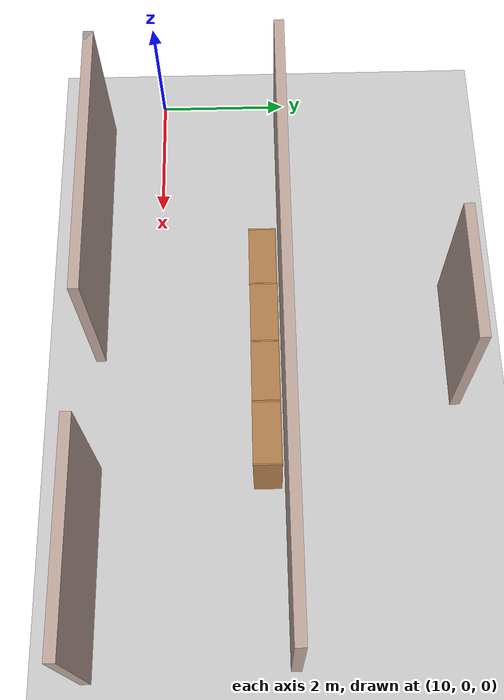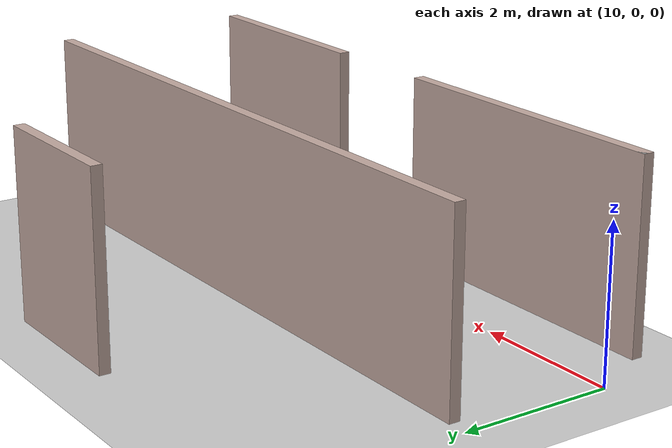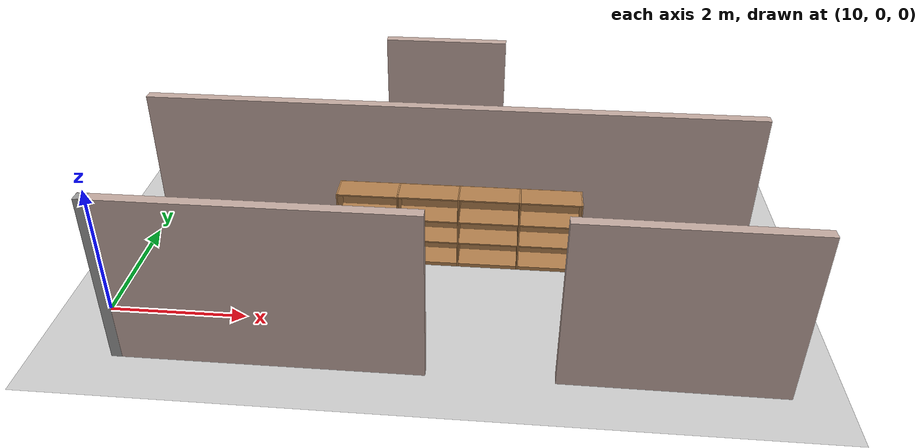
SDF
<sdf version="1.6">
 <world name="default">
  <model name="ground_plane">
   <static>1</static>
   <link name="link">
    <collision name="collision">
     <geometry><plane><normal>0 0 1</normal><size>100 100</size></plane></geometry>
     <surface><friction><ode><mu>100</mu><mu2>50</mu2></ode></friction></surface>
    </collision>
    <visual name="visual">
     <cast_shadows>0</cast_shadows>
     <geometry><plane><normal>0 0 1</normal><size>100 100</size></plane></geometry>
     <material>
      <script><uri>file://media/materials/scripts/gazebo.material</uri><name>Gazebo/Grey</name></script>
     </material>
    </visual>
   </link>
  </model>
  <model name="floor">
   <link name="Wall_100">
    <pose>16.5942 0.36536 0 0 -0 3.13626</pose>
    <visual name="Wall_100_Visual">
     <pose>0 0 1.25 0 -0 0</pose>
     <geometry><box><size>3.00028 0.15 2.5</size></box></geometry>
     <material>
      <script><uri>file://media/materials/scripts/gazebo.material</uri><name>Gazebo/Grey</name></script>
      <ambient>0.760784 0.662745 0.627451 1</ambient>
     </material>
     <meta><layer>0</layer></meta>
    </visual>
    <collision name="Wall_100_Collision">
     <pose>0 0 1.25 0 -0 0</pose>
     <geometry><box><size>3.00028 0.15 2.5</size></box></geometry>
     <surface>
      <friction>
       <ode><mu>1</mu><mu2>1</mu2><fdir1>0 0 0</fdir1><slip1>0</slip1><slip2>0</slip2></ode>
       <torsional>
        <coefficient>1</coefficient>
        <patch_radius>0</patch_radius>
        <surface_radius>0</surface_radius>
        <use_patch_radius>1</use_patch_radius>
        <ode><slip>0</slip></ode>
       </torsional>
      </friction>
      <bounce><restitution_coefficient>0</restitution_coefficient><threshold>1e+06</threshold></bounce>
      <contact>
       <collide_without_contact>0</collide_without_contact>
       <collide_without_contact_bitmask>1</collide_without_contact_bitmask>
       <collide_bitmask>1</collide_bitmask>
       <ode>
        <soft_cfm>0</soft_cfm>
        <soft_erp>0.2</soft_erp>
        <kp>1e+13</kp>
        <kd>1</kd>
        <max_vel>0.01</max_vel>
        <min_depth>0</min_depth>
       </ode>
       <bullet>
        <split_impulse>1</split_impulse>
        <split_impulse_penetration_threshold>-0.01</split_impulse_penetration_threshold>
        <soft_cfm>0</soft_cfm>
        <soft_erp>0.2</soft_erp>
        <kp>1e+13</kp>
        <kd>1</kd>
       </bullet>
      </contact>
     </surface>
    </collision>
   </link>
   <link name="Wall_102">
    <pose>11.2692 0.372965 0 0 -0 3.14159</pose>
    <visual name="Wall_102_Visual">
     <pose>0 0 1.25 0 -0 0</pose>
     <geometry><box><size>4.25 0.15 2.5</size></box></geometry>
     <material>
      <script><uri>file://media/materials/scripts/gazebo.material</uri><name>Gazebo/Grey</name></script>
      <ambient>0.760784 0.662745 0.627451 1</ambient>
     </material>
     <meta><layer>0</layer></meta>
    </visual>
    <collision name="Wall_102_Collision">
     <pose>0 0 1.25 0 -0 0</pose>
     <geometry><box><size>4.25 0.15 2.5</size></box></geometry>
     <surface>
      <friction>
       <ode><mu>1</mu><mu2>1</mu2><fdir1>0 0 0</fdir1><slip1>0</slip1><slip2>0</slip2></ode>
       <torsional>
        <coefficient>1</coefficient>
        <patch_radius>0</patch_radius>
        <surface_radius>0</surface_radius>
        <use_patch_radius>1</use_patch_radius>
        <ode><slip>0</slip></ode>
       </torsional>
      </friction>
      <bounce><restitution_coefficient>0</restitution_coefficient><threshold>1e+06</threshold></bounce>
      <contact>
       <collide_without_contact>0</collide_without_contact>
       <collide_without_contact_bitmask>1</collide_without_contact_bitmask>
       <collide_bitmask>1</collide_bitmask>
       <ode>
        <soft_cfm>0</soft_cfm>
        <soft_erp>0.2</soft_erp>
        <kp>1e+13</kp>
        <kd>1</kd>
        <max_vel>0.01</max_vel>
        <min_depth>0</min_depth>
       </ode>
       <bullet>
        <split_impulse>1</split_impulse>
        <split_impulse_penetration_threshold>-0.01</split_impulse_penetration_threshold>
        <soft_cfm>0</soft_cfm>
        <soft_erp>0.2</soft_erp>
        <kp>1e+13</kp>
        <kd>1</kd>
       </bullet>
      </contact>
     </surface>
    </collision>
   </link>
   <link name="Wall_103">
    <pose>9.21925 0.372965 0 0 -0 0</pose>
    <visual name="Wall_103_Visual">
     <pose>0 0 1.25 0 -0 0</pose>
     <geometry><box><size>0.15 0.15 2.5</size></box></geometry>
     <material>
      <script><uri>file://media/materials/scripts/gazebo.material</uri><name>Gazebo/Grey</name></script>
      <ambient>1 1 1 1</ambient>
     </material>
     <meta><layer>0</layer></meta>
    </visual>
    <collision name="Wall_103_Collision">
     <pose>0 0 1.25 0 -0 0</pose>
     <geometry><box><size>0.15 0.15 2.5</size></box></geometry>
     <surface>
      <friction>
       <ode><mu>1</mu><mu2>1</mu2><fdir1>0 0 0</fdir1><slip1>0</slip1><slip2>0</slip2></ode>
       <torsional>
        <coefficient>1</coefficient>
        <patch_radius>0</patch_radius>
        <surface_radius>0</surface_radius>
        <use_patch_radius>1</use_patch_radius>
        <ode><slip>0</slip></ode>
       </torsional>
      </friction>
      <bounce><restitution_coefficient>0</restitution_coefficient><threshold>1e+06</threshold></bounce>
      <contact>
       <collide_without_contact>0</collide_without_contact>
       <collide_without_contact_bitmask>1</collide_without_contact_bitmask>
       <collide_bitmask>1</collide_bitmask>
       <ode>
        <soft_cfm>0</soft_cfm>
        <soft_erp>0.2</soft_erp>
        <kp>1e+13</kp>
        <kd>1</kd>
        <max_vel>0.01</max_vel>
        <min_depth>0</min_depth>
       </ode>
       <bullet>
        <split_impulse>1</split_impulse>
        <split_impulse_penetration_threshold>-0.01</split_impulse_penetration_threshold>
        <soft_cfm>0</soft_cfm>
        <soft_erp>0.2</soft_erp>
        <kp>1e+13</kp>
        <kd>1</kd>
       </bullet>
      </contact>
     </surface>
    </collision>
   </link>
   <link name="Wall_148">
    <pose>13.2299 5.70287 0 0 -0 0</pose>
    <visual name="Wall_148_Visual">
     <pose>0 0 1.25 0 -0 0</pose>
     <geometry><box><size>2 0.15 2.5</size></box></geometry>
     <material>
      <script><uri>file://media/materials/scripts/gazebo.material</uri><name>Gazebo/Grey</name></script>
      <ambient>0.760784 0.662745 0.627451 1</ambient>
     </material>
     <meta><layer>0</layer></meta>
    </visual>
    <collision name="Wall_148_Collision">
     <pose>0 0 1.25 0 -0 0</pose>
     <geometry><box><size>2 0.15 2.5</size></box></geometry>
     <surface>
      <friction>
       <ode><mu>1</mu><mu2>1</mu2><fdir1>0 0 0</fdir1><slip1>0</slip1><slip2>0</slip2></ode>
       <torsional>
        <coefficient>1</coefficient>
        <patch_radius>0</patch_radius>
        <surface_radius>0</surface_radius>
        <use_patch_radius>1</use_patch_radius>
        <ode><slip>0</slip></ode>
       </torsional>
      </friction>
      <bounce><restitution_coefficient>0</restitution_coefficient><threshold>1e+06</threshold></bounce>
      <contact>
       <collide_without_contact>0</collide_without_contact>
       <collide_without_contact_bitmask>1</collide_without_contact_bitmask>
       <collide_bitmask>1</collide_bitmask>
       <ode>
        <soft_cfm>0</soft_cfm>
        <soft_erp>0.2</soft_erp>
        <kp>1e+13</kp>
        <kd>1</kd>
        <max_vel>0.01</max_vel>
        <min_depth>0</min_depth>
       </ode>
       <bullet>
        <split_impulse>1</split_impulse>
        <split_impulse_penetration_threshold>-0.01</split_impulse_penetration_threshold>
        <soft_cfm>0</soft_cfm>
        <soft_erp>0.2</soft_erp>
        <kp>1e+13</kp>
        <kd>1</kd>
       </bullet>
      </contact>
     </surface>
    </collision>
   </link>
   <link name="Wall_97">
    <pose>13.4977 3.19708 0 0 -0 0</pose>
    <visual name="Wall_97_Visual">
     <pose>0 0 1.25 0 -0 0</pose>
     <geometry><box><size>9 0.15 2.5</size></box></geometry>
     <material>
      <script><uri>file://media/materials/scripts/gazebo.material</uri><name>Gazebo/Grey</name></script>
      <ambient>0.760784 0.662745 0.627451 1</ambient>
     </material>
     <meta><layer>0</layer></meta>
    </visual>
    <collision name="Wall_97_Collision">
     <pose>0 0 1.25 0 -0 0</pose>
     <geometry><box><size>9 0.15 2.5</size></box></geometry>
     <surface>
      <friction>
       <ode><mu>1</mu><mu2>1</mu2><fdir1>0 0 0</fdir1><slip1>0</slip1><slip2>0</slip2></ode>
       <torsional>
        <coefficient>1</coefficient>
        <patch_radius>0</patch_radius>
        <surface_radius>0</surface_radius>
        <use_patch_radius>1</use_patch_radius>
        <ode><slip>0</slip></ode>
       </torsional>
      </friction>
      <bounce><restitution_coefficient>0</restitution_coefficient><threshold>1e+06</threshold></bounce>
      <contact>
       <collide_without_contact>0</collide_without_contact>
       <collide_without_contact_bitmask>1</collide_without_contact_bitmask>
       <collide_bitmask>1</collide_bitmask>
       <ode>
        <soft_cfm>0</soft_cfm>
        <soft_erp>0.2</soft_erp>
        <kp>1e+13</kp>
        <kd>1</kd>
        <max_vel>0.01</max_vel>
        <min_depth>0</min_depth>
       </ode>
       <bullet>
        <split_impulse>1</split_impulse>
        <split_impulse_penetration_threshold>-0.01</split_impulse_penetration_threshold>
        <soft_cfm>0</soft_cfm>
        <soft_erp>0.2</soft_erp>
        <kp>1e+13</kp>
        <kd>1</kd>
       </bullet>
      </contact>
     </surface>
    </collision>
   </link>
   <static>1</static>
   <pose>1.26361 -1.27025 0 0 -0 0</pose>
  </model>
  <model name="Bookshelf-4_clone_15_clone_0">
   <model name="bookshelf">
    <static>1</static>
    <link name="link">
     <inertial><mass>1</mass></inertial>
     <collision name="back">
      <pose>0 0.005 0.6 0 -0 0</pose>
      <geometry><box><size>0.9 0.01 1.2</size></box></geometry>
     </collision>
     <visual name="visual1">
      <pose>0 0.005 0.6 0 -0 0</pose>
      <geometry><box><size>0.9 0.01 1.2</size></box></geometry>
      <material>
       <script><uri>file://media/materials/scripts/gazebo.material</uri><name>Gazebo/Wood</name></script>
      </material>
     </visual>
     <collision name="left_side">
      <pose>0.45 -0.195 0.6 0 -0 0</pose>
      <geometry><box><size>0.02 0.4 1.2</size></box></geometry>
     </collision>
     <visual name="visual2">
      <pose>0.45 -0.195 0.6 0 -0 0</pose>
      <geometry><box><size>0.02 0.4 1.2</size></box></geometry>
      <material>
       <script><uri>file://media/materials/scripts/gazebo.material</uri><name>Gazebo/Wood</name></script>
      </material>
     </visual>
     <collision name="right_side">
      <pose>-0.45 -0.195 0.6 0 -0 0</pose>
      <geometry><box><size>0.02 0.4 1.2</size></box></geometry>
     </collision>
     <visual name="visual3">
      <pose>-0.45 -0.195 0.6 0 -0 0</pose>
      <geometry><box><size>0.02 0.4 1.2</size></box></geometry>
      <material>
       <script><uri>file://media/materials/scripts/gazebo.material</uri><name>Gazebo/Wood</name></script>
      </material>
     </visual>
     <collision name="bottom">
      <pose>0 -0.195 0.03 0 -0 0</pose>
      <geometry><box><size>0.88 0.4 0.06</size></box></geometry>
     </collision>
     <visual name="visual4">
      <pose>0 -0.195 0.03 0 -0 0</pose>
      <geometry><box><size>0.88 0.4 0.06</size></box></geometry>
      <material>
       <script><uri>file://media/materials/scripts/gazebo.material</uri><name>Gazebo/Wood</name></script>
      </material>
     </visual>
     <collision name="top">
      <pose>0 -0.195 1.19 0 -0 0</pose>
      <geometry><box><size>0.88 0.4 0.02</size></box></geometry>
     </collision>
     <visual name="visual5">
      <pose>0 -0.195 1.19 0 -0 0</pose>
      <geometry><box><size>0.88 0.4 0.02</size></box></geometry>
      <material>
       <script><uri>file://media/materials/scripts/gazebo.material</uri><name>Gazebo/Wood</name></script>
      </material>
     </visual>
     <collision name="low_shelf">
      <pose>0 -0.195 0.43 0 -0 0</pose>
      <geometry><box><size>0.88 0.4 0.02</size></box></geometry>
     </collision>
     <visual name="visual6">
      <pose>0 -0.195 0.43 0 -0 0</pose>
      <geometry><box><size>0.88 0.4 0.02</size></box></geometry>
      <material>
       <script><uri>file://media/materials/scripts/gazebo.material</uri><name>Gazebo/Wood</name></script>
      </material>
     </visual>
     <collision name="high_shelf">
      <pose>0 -0.195 0.8 0 -0 0</pose>
      <geometry><box><size>0.88 0.4 0.02</size></box></geometry>
     </collision>
     <visual name="visual7">
      <pose>0 -0.195 0.8 0 -0 0</pose>
      <geometry><box><size>0.88 0.4 0.02</size></box></geometry>
      <material>
       <script><uri>file://media/materials/scripts/gazebo.material</uri><name>Gazebo/Wood</name></script>
      </material>
     </visual>
    </link>
    <pose>-1.35671 -0.002097 0 0 -0 0</pose>
   </model>
   <model name="bookshelf_0">
    <static>1</static>
    <link name="link">
     <inertial><mass>1</mass></inertial>
     <collision name="back">
      <pose>0 0.005 0.6 0 -0 0</pose>
      <geometry><box><size>0.9 0.01 1.2</size></box></geometry>
     </collision>
     <visual name="visual1">
      <pose>0 0.005 0.6 0 -0 0</pose>
      <geometry><box><size>0.9 0.01 1.2</size></box></geometry>
      <material>
       <script><uri>file://media/materials/scripts/gazebo.material</uri><name>Gazebo/Wood</name></script>
      </material>
     </visual>
     <collision name="left_side">
      <pose>0.45 -0.195 0.6 0 -0 0</pose>
      <geometry><box><size>0.02 0.4 1.2</size></box></geometry>
     </collision>
     <visual name="visual2">
      <pose>0.45 -0.195 0.6 0 -0 0</pose>
      <geometry><box><size>0.02 0.4 1.2</size></box></geometry>
      <material>
       <script><uri>file://media/materials/scripts/gazebo.material</uri><name>Gazebo/Wood</name></script>
      </material>
     </visual>
     <collision name="right_side">
      <pose>-0.45 -0.195 0.6 0 -0 0</pose>
      <geometry><box><size>0.02 0.4 1.2</size></box></geometry>
     </collision>
     <visual name="visual3">
      <pose>-0.45 -0.195 0.6 0 -0 0</pose>
      <geometry><box><size>0.02 0.4 1.2</size></box></geometry>
      <material>
       <script><uri>file://media/materials/scripts/gazebo.material</uri><name>Gazebo/Wood</name></script>
      </material>
     </visual>
     <collision name="bottom">
      <pose>0 -0.195 0.03 0 -0 0</pose>
      <geometry><box><size>0.88 0.4 0.06</size></box></geometry>
     </collision>
     <visual name="visual4">
      <pose>0 -0.195 0.03 0 -0 0</pose>
      <geometry><box><size>0.88 0.4 0.06</size></box></geometry>
      <material>
       <script><uri>file://media/materials/scripts/gazebo.material</uri><name>Gazebo/Wood</name></script>
      </material>
     </visual>
     <collision name="top">
      <pose>0 -0.195 1.19 0 -0 0</pose>
      <geometry><box><size>0.88 0.4 0.02</size></box></geometry>
     </collision>
     <visual name="visual5">
      <pose>0 -0.195 1.19 0 -0 0</pose>
      <geometry><box><size>0.88 0.4 0.02</size></box></geometry>
      <material>
       <script><uri>file://media/materials/scripts/gazebo.material</uri><name>Gazebo/Wood</name></script>
      </material>
     </visual>
     <collision name="low_shelf">
      <pose>0 -0.195 0.43 0 -0 0</pose>
      <geometry><box><size>0.88 0.4 0.02</size></box></geometry>
     </collision>
     <visual name="visual6">
      <pose>0 -0.195 0.43 0 -0 0</pose>
      <geometry><box><size>0.88 0.4 0.02</size></box></geometry>
      <material>
       <script><uri>file://media/materials/scripts/gazebo.material</uri><name>Gazebo/Wood</name></script>
      </material>
     </visual>
     <collision name="high_shelf">
      <pose>0 -0.195 0.8 0 -0 0</pose>
      <geometry><box><size>0.88 0.4 0.02</size></box></geometry>
     </collision>
     <visual name="visual7">
      <pose>0 -0.195 0.8 0 -0 0</pose>
      <geometry><box><size>0.88 0.4 0.02</size></box></geometry>
      <material>
       <script><uri>file://media/materials/scripts/gazebo.material</uri><name>Gazebo/Wood</name></script>
      </material>
     </visual>
    </link>
    <pose>-0.452974 0.001386 0 0 -0 0</pose>
   </model>
   <model name="bookshelf_1">
    <static>1</static>
    <link name="link">
     <inertial><mass>1</mass></inertial>
     <collision name="back">
      <pose>0 0.005 0.6 0 -0 0</pose>
      <geometry><box><size>0.9 0.01 1.2</size></box></geometry>
     </collision>
     <visual name="visual1">
      <pose>0 0.005 0.6 0 -0 0</pose>
      <geometry><box><size>0.9 0.01 1.2</size></box></geometry>
      <material>
       <script><uri>file://media/materials/scripts/gazebo.material</uri><name>Gazebo/Wood</name></script>
      </material>
     </visual>
     <collision name="left_side">
      <pose>0.45 -0.195 0.6 0 -0 0</pose>
      <geometry><box><size>0.02 0.4 1.2</size></box></geometry>
     </collision>
     <visual name="visual2">
      <pose>0.45 -0.195 0.6 0 -0 0</pose>
      <geometry><box><size>0.02 0.4 1.2</size></box></geometry>
      <material>
       <script><uri>file://media/materials/scripts/gazebo.material</uri><name>Gazebo/Wood</name></script>
      </material>
     </visual>
     <collision name="right_side">
      <pose>-0.45 -0.195 0.6 0 -0 0</pose>
      <geometry><box><size>0.02 0.4 1.2</size></box></geometry>
     </collision>
     <visual name="visual3">
      <pose>-0.45 -0.195 0.6 0 -0 0</pose>
      <geometry><box><size>0.02 0.4 1.2</size></box></geometry>
      <material>
       <script><uri>file://media/materials/scripts/gazebo.material</uri><name>Gazebo/Wood</name></script>
      </material>
     </visual>
     <collision name="bottom">
      <pose>0 -0.195 0.03 0 -0 0</pose>
      <geometry><box><size>0.88 0.4 0.06</size></box></geometry>
     </collision>
     <visual name="visual4">
      <pose>0 -0.195 0.03 0 -0 0</pose>
      <geometry><box><size>0.88 0.4 0.06</size></box></geometry>
      <material>
       <script><uri>file://media/materials/scripts/gazebo.material</uri><name>Gazebo/Wood</name></script>
      </material>
     </visual>
     <collision name="top">
      <pose>0 -0.195 1.19 0 -0 0</pose>
      <geometry><box><size>0.88 0.4 0.02</size></box></geometry>
     </collision>
     <visual name="visual5">
      <pose>0 -0.195 1.19 0 -0 0</pose>
      <geometry><box><size>0.88 0.4 0.02</size></box></geometry>
      <material>
       <script><uri>file://media/materials/scripts/gazebo.material</uri><name>Gazebo/Wood</name></script>
      </material>
     </visual>
     <collision name="low_shelf">
      <pose>0 -0.195 0.43 0 -0 0</pose>
      <geometry><box><size>0.88 0.4 0.02</size></box></geometry>
     </collision>
     <visual name="visual6">
      <pose>0 -0.195 0.43 0 -0 0</pose>
      <geometry><box><size>0.88 0.4 0.02</size></box></geometry>
      <material>
       <script><uri>file://media/materials/scripts/gazebo.material</uri><name>Gazebo/Wood</name></script>
      </material>
     </visual>
     <collision name="high_shelf">
      <pose>0 -0.195 0.8 0 -0 0</pose>
      <geometry><box><size>0.88 0.4 0.02</size></box></geometry>
     </collision>
     <visual name="visual7">
      <pose>0 -0.195 0.8 0 -0 0</pose>
      <geometry><box><size>0.88 0.4 0.02</size></box></geometry>
      <material>
       <script><uri>file://media/materials/scripts/gazebo.material</uri><name>Gazebo/Wood</name></script>
      </material>
     </visual>
    </link>
    <pose>0.450456 0.000733 0 0 -0 0</pose>
   </model>
   <model name="bookshelf_2">
    <static>1</static>
    <link name="link">
     <inertial><mass>1</mass></inertial>
     <collision name="back">
      <pose>0 0.005 0.6 0 -0 0</pose>
      <geometry><box><size>0.9 0.01 1.2</size></box></geometry>
     </collision>
     <visual name="visual1">
      <pose>0 0.005 0.6 0 -0 0</pose>
      <geometry><box><size>0.9 0.01 1.2</size></box></geometry>
      <material>
       <script><uri>file://media/materials/scripts/gazebo.material</uri><name>Gazebo/Wood</name></script>
      </material>
     </visual>
     <collision name="left_side">
      <pose>0.45 -0.195 0.6 0 -0 0</pose>
      <geometry><box><size>0.02 0.4 1.2</size></box></geometry>
     </collision>
     <visual name="visual2">
      <pose>0.45 -0.195 0.6 0 -0 0</pose>
      <geometry><box><size>0.02 0.4 1.2</size></box></geometry>
      <material>
       <script><uri>file://media/materials/scripts/gazebo.material</uri><name>Gazebo/Wood</name></script>
      </material>
     </visual>
     <collision name="right_side">
      <pose>-0.45 -0.195 0.6 0 -0 0</pose>
      <geometry><box><size>0.02 0.4 1.2</size></box></geometry>
     </collision>
     <visual name="visual3">
      <pose>-0.45 -0.195 0.6 0 -0 0</pose>
      <geometry><box><size>0.02 0.4 1.2</size></box></geometry>
      <material>
       <script><uri>file://media/materials/scripts/gazebo.material</uri><name>Gazebo/Wood</name></script>
      </material>
     </visual>
     <collision name="bottom">
      <pose>0 -0.195 0.03 0 -0 0</pose>
      <geometry><box><size>0.88 0.4 0.06</size></box></geometry>
     </collision>
     <visual name="visual4">
      <pose>0 -0.195 0.03 0 -0 0</pose>
      <geometry><box><size>0.88 0.4 0.06</size></box></geometry>
      <material>
       <script><uri>file://media/materials/scripts/gazebo.material</uri><name>Gazebo/Wood</name></script>
      </material>
     </visual>
     <collision name="top">
      <pose>0 -0.195 1.19 0 -0 0</pose>
      <geometry><box><size>0.88 0.4 0.02</size></box></geometry>
     </collision>
     <visual name="visual5">
      <pose>0 -0.195 1.19 0 -0 0</pose>
      <geometry><box><size>0.88 0.4 0.02</size></box></geometry>
      <material>
       <script><uri>file://media/materials/scripts/gazebo.material</uri><name>Gazebo/Wood</name></script>
      </material>
     </visual>
     <collision name="low_shelf">
      <pose>0 -0.195 0.43 0 -0 0</pose>
      <geometry><box><size>0.88 0.4 0.02</size></box></geometry>
     </collision>
     <visual name="visual6">
      <pose>0 -0.195 0.43 0 -0 0</pose>
      <geometry><box><size>0.88 0.4 0.02</size></box></geometry>
      <material>
       <script><uri>file://media/materials/scripts/gazebo.material</uri><name>Gazebo/Wood</name></script>
      </material>
     </visual>
     <collision name="high_shelf">
      <pose>0 -0.195 0.8 0 -0 0</pose>
      <geometry><box><size>0.88 0.4 0.02</size></box></geometry>
     </collision>
     <visual name="visual7">
      <pose>0 -0.195 0.8 0 -0 0</pose>
      <geometry><box><size>0.88 0.4 0.02</size></box></geometry>
      <material>
       <script><uri>file://media/materials/scripts/gazebo.material</uri><name>Gazebo/Wood</name></script>
      </material>
     </visual>
    </link>
    <pose>1.35922 -1.7e-05 0 0 -0 0</pose>
   </model>
   <static>0</static>
   <pose>14.9169 1.79776 0.041819 0 -0 0</pose>
  </model>
 </world>
</sdf>
